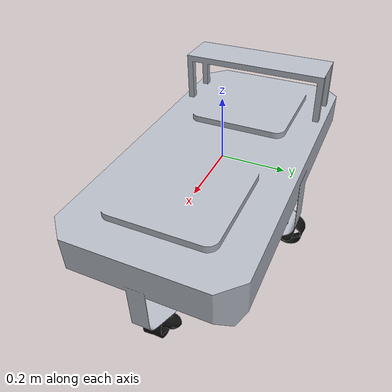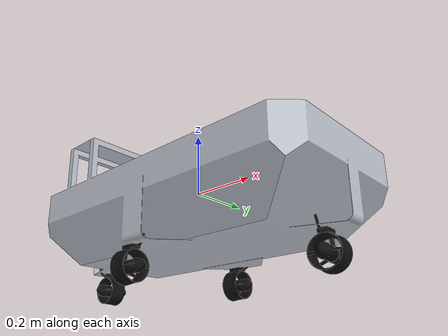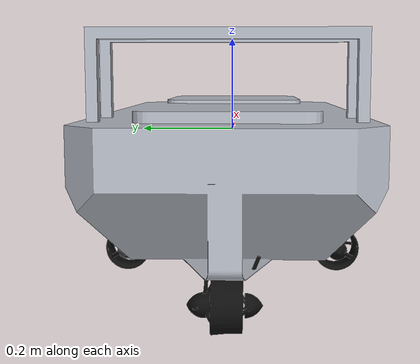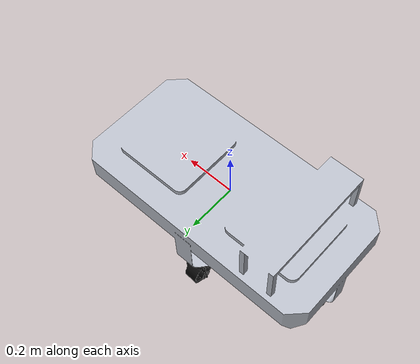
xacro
<?xml version="1.0" encoding="utf-8"?>
<robot
  name="hu501urdf"
  xmlns:xacro="http://ros.org/wiki/xacro">
  <xacro:arg name="namespace" default="hu501"/>
  <xacro:arg name="locked" default="false"/>
  <xacro:arg name="vrx_sensors_enabled" default="false"/>
  <xacro:arg name="thruster_config" default="H"/>
  <xacro:property name="namespace" value="$(arg namespace)"/>
  <link
    name="base_link">
    <inertial>
      <origin
        xyz="0 0 -0.16302"
        rpy="0 0 0" />
      <mass
        value="22.584" />
      <inertia
        ixx="0.568866"
        ixy="-3.39E-06"
        ixz="-0.0625"
        iyy="1.81792"
        iyz="-5.51E-06"
        izz="2.07173" />
    </inertial>
    <visual>
      <origin
        xyz="-0.29592 -1.03178 -0.05518"
        rpy="0 0 3.14159" />
      <geometry>
        <mesh
          filename="package://hu501urdf/meshes/base_link.STL" />
      </geometry>
      <material
        name="hu501_hull">
        <color
          rgba="0.72 0.74 0.78 1" />
      </material>
    </visual>
    <!-- 碰撞用包围盒代替 STL 网格: 网格-高度场碰撞对在 dartsim/bullet 下
         不可靠, 且盒碰撞更省算力 -->
    <collision>
      <origin xyz="0 0 -0.05" rpy="0 0 0" />
      <geometry>
        <box size="1.04 0.52 0.4" />
      </geometry>
    </collision>
  </link>
  <link
    name="thruster1_Link">
    <inertial>
      <origin
        xyz="-1.3592E-07 0.0053084 -0.028391"
        rpy="0 0 0" />
      <mass
        value="0.20168" />
      <inertia
        ixx="0.00020552"
        ixy="-3.7292E-10"
        ixz="-8.5462E-10"
        iyy="0.00015966"
        iyz="-7.6597E-06"
        izz="0.00025129" />
    </inertial>
    <visual>
      <origin
        xyz="0 0 0"
        rpy="0 0 0" />
      <geometry>
        <mesh
          filename="package://hu501urdf/meshes/thruster1_Link.STL" />
      </geometry>
      <material
        name="hu501_thruster_1">
        <color
          rgba="0.05 0.05 0.05 1" />
      </material>
    </visual>
    <collision>
      <origin
        xyz="0 0 0"
        rpy="0 0 0" />
      <geometry>
        <mesh
          filename="package://hu501urdf/meshes/thruster1_Link.STL" />
      </geometry>
    </collision>
  </link>
  <joint
    name="joint1_turuster1"
    type="continuous">
    <origin
      xyz="-0.01 0.23 -0.2597"
      rpy="1.5708 0 1.570793" />
    <parent
      link="base_link" />
    <child
      link="thruster1_Link" />
    <axis
      xyz="0 0 1" />
    <dynamics
      damping="0.01"
      friction="0.0" />
    <limit
      effort="40"
      velocity="15" />
  </joint>
  <link
    name="thruster2_Link">
    <inertial>
      <origin
        xyz="-1.3745E-07 0.0051293 -0.030269"
        rpy="0 0 0" />
      <mass
        value="0.20953" />
      <inertia
        ixx="0.00020658"
        ixy="-4.2617E-10"
        ixz="-8.5048E-10"
        iyy="0.00016074"
        iyz="-7.6696E-06"
        izz="0.00025296" />
    </inertial>
    <visual>
      <origin
        xyz="0 0 0"
        rpy="0 0 0" />
      <geometry>
        <mesh
          filename="package://hu501urdf/meshes/thruster2_Link.STL" />
      </geometry>
      <material
        name="hu501_thruster_2">
        <color
          rgba="0.05 0.05 0.05 1" />
      </material>
    </visual>
    <collision>
      <origin
        xyz="0 0 0"
        rpy="0 0 0" />
      <geometry>
        <mesh
          filename="package://hu501urdf/meshes/thruster2_Link.STL" />
      </geometry>
    </collision>
  </link>
  <joint
    name="joint2_thruster2"
    type="continuous">
    <origin
      xyz="-0.01 -0.23 -0.2597"
      rpy="1.5708 0 1.570793" />
    <parent
      link="base_link" />
    <child
      link="thruster2_Link" />
    <axis
      xyz="0 0 1" />
    <dynamics
      damping="0.01"
      friction="0.0" />
    <limit
      effort="40"
      velocity="15" />
  </joint>
  <link
    name="thruster3_Link">
    <inertial>
      <origin
        xyz="9.3955E-06 -0.0051236 0.030236"
        rpy="0 0 0" />
      <mass
        value="0.20976" />
      <inertia
        ixx="0.00020659"
        ixy="2.2386E-10"
        ixz="8.5055E-10"
        iyy="0.00016074"
        iyz="-7.6692E-06"
        izz="0.00025296" />
    </inertial>
    <visual>
      <origin
        xyz="0 0 0"
        rpy="0 0 0" />
      <geometry>
        <mesh
          filename="package://hu501urdf/meshes/thruster3_Link.STL" />
      </geometry>
      <material
        name="hu501_thruster_3">
        <color
          rgba="0.05 0.05 0.05 1" />
      </material>
    </visual>
    <collision>
      <origin
        xyz="0 0 0"
        rpy="0 0 0" />
      <geometry>
        <mesh
          filename="package://hu501urdf/meshes/thruster3_Link.STL" />
      </geometry>
    </collision>
  </link>
  <joint
    name="joint3_thruster3"
    type="continuous">
    <origin
      xyz="0.44 -0.02998 -0.25915"
      rpy="-1.5697 -0.046487 0.098693" />
    <parent
      link="base_link" />
    <child
      link="thruster3_Link" />
    <axis
      xyz="0 0 -1" />
    <dynamics
      damping="0.01"
      friction="0.0" />
    <limit
      effort="40"
      velocity="15" />
  </joint>
  <link
    name="thruster4_Link">
    <inertial>
      <origin
        xyz="-1.3454E-07 -0.0051178 0.030204"
        rpy="0 0 0" />
      <mass
        value="0.21" />
      <inertia
        ixx="0.00020659"
        ixy="5.5639E-10"
        ixz="8.7177E-10"
        iyy="0.00016075"
        iyz="-7.6696E-06"
        izz="0.00025296" />
    </inertial>
    <visual>
      <origin
        xyz="0 0 0"
        rpy="0 0 0" />
      <geometry>
        <mesh
          filename="package://hu501urdf/meshes/thruster4_Link.STL" />
      </geometry>
      <material
        name="hu501_thruster_4">
        <color
          rgba="0.05 0.05 0.05 1" />
      </material>
    </visual>
    <collision>
      <origin
        xyz="0 0 0"
        rpy="0 0 0" />
      <geometry>
        <mesh
          filename="package://hu501urdf/meshes/thruster4_Link.STL" />
      </geometry>
    </collision>
  </link>
  <joint
    name="joint4_thruster4"
    type="continuous">
    <origin
      xyz="-0.44 -0.02778 -0.26142"
      rpy="-1.5596 -0.026539 0.012393" />
    <parent
      link="base_link" />
    <child
      link="thruster4_Link" />
    <axis
      xyz="0 0 -1" />
    <dynamics
      damping="0.01"
      friction="0.0" />
    <limit
      effort="40"
      velocity="15" />
  </joint>
  <!-- ================= VRX 水面物理 ================= -->
  <!-- 浮力：两根虚拟浮筒近似船底（船体 1.04m x 0.52m，总质量约 23.4kg）
       每个插件 = 一根浮筒：总浮力 = 圆截面浸水面积 x hull_length x rho x g
       采样点放在船底 z=-0.2：平衡时每筒浸深约 6.9cm，即吃水约 7cm（实船标定值） -->
  <gazebo>
    <plugin filename="libSurface.so" name="vrx::Surface">
      <link_name>base_link</link_name>
      <hull_length>1.04</hull_length>
      <hull_radius>0.13</hull_radius>
      <fluid_level>0</fluid_level>
      <points>
        <point>0.4 0.13 -0.2</point>
        <point>0.0 0.13 -0.2</point>
        <point>-0.4 0.13 -0.2</point>
      </points>
      <wavefield>
        <topic>/vrx/wavefield/parameters</topic>
      </wavefield>
    </plugin>

    <plugin filename="libSurface.so" name="vrx::Surface">
      <link_name>base_link</link_name>
      <hull_length>1.04</hull_length>
      <hull_radius>0.13</hull_radius>
      <fluid_level>0</fluid_level>
      <points>
        <point>0.4 -0.13 -0.2</point>
        <point>0.0 -0.13 -0.2</point>
        <point>-0.4 -0.13 -0.2</point>
      </points>
      <wavefield>
        <topic>/vrx/wavefield/parameters</topic>
      </wavefield>
    </plugin>

    <!-- 水动力阻尼（初值按 23kg 小船相对 WAM-V 缩小，需后续微调） -->
    <plugin filename="libSimpleHydrodynamics.so" name="vrx::SimpleHydrodynamics">
      <link_name>base_link</link_name>
      <xDotU>0.0</xDotU>
      <yDotV>0.0</yDotV>
      <nDotR>0.0</nDotR>
      <xU>10.0</xU>
      <xUU>15.0</xUU>
      <yV>10.0</yV>
      <yVV>10.0</yVV>
      <zW>50.0</zW>
      <kP>30.0</kP>
      <kPP>60.0</kPP>
      <mQ>30.0</mQ>
      <mQQ>60.0</mQQ>
      <nR>40.0</nR>
      <nRR>40.0</nRR>
    </plugin>
  </gazebo>

  <!-- ================= 推进器 ================= -->
  <!-- t1/t2：主推（前后），正推力 = +x 前进
       t3/t4：侧推（左右），正推力 = -y（向右舷），t3 在船尾 t4 在船首 -->
  <gazebo>
    <plugin filename="gz-sim-thruster-system" name="gz::sim::systems::Thruster">
      <joint_name>joint1_turuster1</joint_name>
      <thrust_coefficient>0.004422</thrust_coefficient>
      <fluid_density>1000</fluid_density>
      <propeller_diameter>0.06</propeller_diameter>
      <velocity_control>true</velocity_control>
      <max_thrust_cmd>40</max_thrust_cmd>
      <namespace>${namespace}</namespace>
      <topic>thrusters/t1/thrust</topic>
      <name>t1</name>
    </plugin>

    <plugin filename="gz-sim-thruster-system" name="gz::sim::systems::Thruster">
      <joint_name>joint2_thruster2</joint_name>
      <thrust_coefficient>0.004422</thrust_coefficient>
      <fluid_density>1000</fluid_density>
      <propeller_diameter>0.06</propeller_diameter>
      <velocity_control>true</velocity_control>
      <max_thrust_cmd>40</max_thrust_cmd>
      <namespace>${namespace}</namespace>
      <topic>thrusters/t2/thrust</topic>
      <name>t2</name>
    </plugin>

    <plugin filename="gz-sim-thruster-system" name="gz::sim::systems::Thruster">
      <joint_name>joint3_thruster3</joint_name>
      <thrust_coefficient>0.004422</thrust_coefficient>
      <fluid_density>1000</fluid_density>
      <propeller_diameter>0.06</propeller_diameter>
      <velocity_control>true</velocity_control>
      <max_thrust_cmd>40</max_thrust_cmd>
      <namespace>${namespace}</namespace>
      <topic>thrusters/t3/thrust</topic>
      <name>t3</name>
    </plugin>

    <plugin filename="gz-sim-thruster-system" name="gz::sim::systems::Thruster">
      <joint_name>joint4_thruster4</joint_name>
      <thrust_coefficient>0.004422</thrust_coefficient>
      <fluid_density>1000</fluid_density>
      <propeller_diameter>0.06</propeller_diameter>
      <velocity_control>true</velocity_control>
      <max_thrust_cmd>40</max_thrust_cmd>
      <namespace>${namespace}</namespace>
      <topic>thrusters/t4/thrust</topic>
      <name>t4</name>
    </plugin>
  </gazebo>

  <!-- ================= 传感器套件 ================= -->
  <xacro:if value="$(arg vrx_sensors_enabled)">

    <!-- GPS 天线 -->
    <link name="gps_link">
      <inertial>
        <mass value="0.05"/>
        <inertia ixx="1e-4" ixy="0" ixz="0" iyy="1e-4" iyz="0" izz="1e-4"/>
      </inertial>
    </link>
    <joint name="gps_joint" type="fixed">
      <origin xyz="0 0 0.4" rpy="0 0 0"/>
      <parent link="base_link"/>
      <child link="gps_link"/>
    </joint>
    <gazebo reference="gps_link">
      <sensor name="navsat" type="navsat">
        <always_on>1</always_on>
        <update_rate>20</update_rate>
      </sensor>
    </gazebo>

    <!-- IMU -->
    <link name="imu_link">
      <inertial>
        <mass value="0.1"/>
        <inertia ixx="5.42e-6" ixy="0" ixz="0" iyy="2.104e-5" iyz="0" izz="2.604e-5"/>
      </inertial>
    </link>
    <joint name="imu_joint" type="fixed">
      <origin xyz="0 0 0.25" rpy="0 0 0"/>
      <parent link="base_link"/>
      <child link="imu_link"/>
    </joint>
    <gazebo reference="imu_link">
      <sensor type="imu" name="imu">
        <update_rate>100</update_rate>
        <imu>
          <angular_velocity>
            <x><noise type="gaussian"><mean>0</mean><stddev>0.009</stddev></noise></x>
            <y><noise type="gaussian"><mean>0</mean><stddev>0.009</stddev></noise></y>
            <z><noise type="gaussian"><mean>0</mean><stddev>0.009</stddev></noise></z>
          </angular_velocity>
          <linear_acceleration>
            <x><noise type="gaussian"><mean>0</mean><stddev>0.021</stddev></noise></x>
            <y><noise type="gaussian"><mean>0</mean><stddev>0.021</stddev></noise></y>
            <z><noise type="gaussian"><mean>0</mean><stddev>0.021</stddev></noise></z>
          </linear_acceleration>
          <orientation_reference_frame>
            <localization>ENU</localization>
          </orientation_reference_frame>
        </imu>
      </sensor>
    </gazebo>

    <!-- 3D LIDAR（16 线） -->
    <link name="lidar_link">
      <inertial>
        <mass value="0.5"/>
        <inertia ixx="0.0011" ixy="0" ixz="0" iyy="0.0011" iyz="0" izz="0.00125"/>
      </inertial>
    </link>
    <joint name="lidar_joint" type="fixed">
      <origin xyz="0 0 0.45" rpy="0 0 0"/>
      <parent link="base_link"/>
      <child link="lidar_link"/>
    </joint>
    <gazebo reference="lidar_link">
      <sensor type="gpu_ray" name="lidar">
        <update_rate>10</update_rate>
        <ray>
          <scan>
            <horizontal>
              <samples>1875</samples>
              <resolution>1</resolution>
              <min_angle>-3.14159</min_angle>
              <max_angle>3.14159</max_angle>
            </horizontal>
            <vertical>
              <samples>16</samples>
              <resolution>1</resolution>
              <min_angle>-0.261799</min_angle>
              <max_angle>0.261799</max_angle>
            </vertical>
          </scan>
          <range>
            <min>0.1</min>
            <max>130</max>
          </range>
        </ray>
      </sensor>
    </gazebo>

    <!-- 前置相机（光学坐标系由 vrx_ros 的 optical_frame_publisher 在运行时自动生成） -->
    <link name="front_camera_link">
      <inertial>
        <mass value="0.05"/>
        <inertia ixx="1e-4" ixy="0" ixz="0" iyy="1e-4" iyz="0" izz="1e-4"/>
      </inertial>
    </link>
    <joint name="front_camera_joint" type="fixed">
      <origin xyz="0.4 0 0.35" rpy="0 0 0"/>
      <parent link="base_link"/>
      <child link="front_camera_link"/>
    </joint>
    <gazebo reference="front_camera_link">
      <sensor type="camera" name="front_camera">
        <update_rate>30</update_rate>
        <camera>
          <horizontal_fov>1.3962634</horizontal_fov>
          <image>
            <width>1280</width>
            <height>720</height>
            <format>R8G8B8</format>
          </image>
          <clip>
            <near>0.05</near>
            <far>400</far>
          </clip>
        </camera>
      </sensor>
    </gazebo>

  </xacro:if>

  <!-- ================= 位置/航向真值 ================= -->
  <gazebo>
    <plugin filename="gz-sim-odometry-publisher-system"
            name="gz::sim::systems::OdometryPublisher">
      <dimensions>3</dimensions>
      <odom_publish_frequency>10.0</odom_publish_frequency>
      <odom_frame>map</odom_frame>
      <robot_base_frame>base_link</robot_base_frame>
    </plugin>
  </gazebo>

  <!-- ================= 位姿/关节状态发布 ================= -->
  <gazebo>
    <plugin filename="gz-sim-pose-publisher-system"
            name="gz::sim::systems::PosePublisher">
      <publish_link_pose>true</publish_link_pose>
      <publish_sensor_pose>true</publish_sensor_pose>
      <publish_collision_pose>false</publish_collision_pose>
      <publish_visual_pose>false</publish_visual_pose>
      <publish_nested_model_pose>false</publish_nested_model_pose>
      <publish_model_pose>true</publish_model_pose>
      <use_pose_vector_msg>true</use_pose_vector_msg>
      <static_publisher>false</static_publisher>
      <static_update_frequency>1</static_update_frequency>
    </plugin>

    <plugin filename="gz-sim-joint-state-publisher-system"
            name="gz::sim::systems::JointStatePublisher">
    </plugin>
  </gazebo>

  <!-- ================= 材质 ================= -->
  <!-- 船体（含盖子）：铝合金（金属灰，高金属度低粗糙度） -->
  <gazebo reference="base_link">
    <visual>
      <material>
        <diffuse>0.72 0.74 0.78 1</diffuse>
        <specular>0.9 0.9 0.9 1</specular>
        <pbr>
          <metal>
            <metalness>0.9</metalness>
            <roughness>0.3</roughness>
          </metal>
        </pbr>
      </material>
    </visual>
  </gazebo>

  <!-- 电机：黑色塑料（哑光，无金属度） -->
  <gazebo reference="thruster1_Link">
    <visual>
      <material>
        <diffuse>0.04 0.04 0.04 1</diffuse>
        <pbr>
          <metal>
            <metalness>0.0</metalness>
            <roughness>0.85</roughness>
          </metal>
        </pbr>
      </material>
    </visual>
  </gazebo>
  <gazebo reference="thruster2_Link">
    <visual>
      <material>
        <diffuse>0.04 0.04 0.04 1</diffuse>
        <pbr>
          <metal>
            <metalness>0.0</metalness>
            <roughness>0.85</roughness>
          </metal>
        </pbr>
      </material>
    </visual>
  </gazebo>
  <gazebo reference="thruster3_Link">
    <visual>
      <material>
        <diffuse>0.04 0.04 0.04 1</diffuse>
        <pbr>
          <metal>
            <metalness>0.0</metalness>
            <roughness>0.85</roughness>
          </metal>
        </pbr>
      </material>
    </visual>
  </gazebo>
  <gazebo reference="thruster4_Link">
    <visual>
      <material>
        <diffuse>0.04 0.04 0.04 1</diffuse>
        <pbr>
          <metal>
            <metalness>0.0</metalness>
            <roughness>0.85</roughness>
          </metal>
        </pbr>
      </material>
    </visual>
  </gazebo>

</robot>
